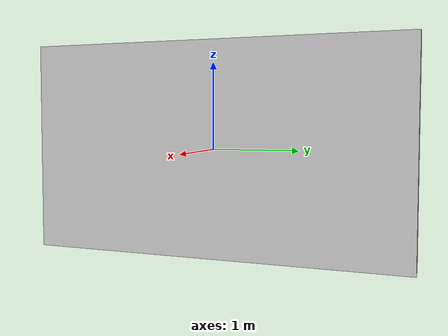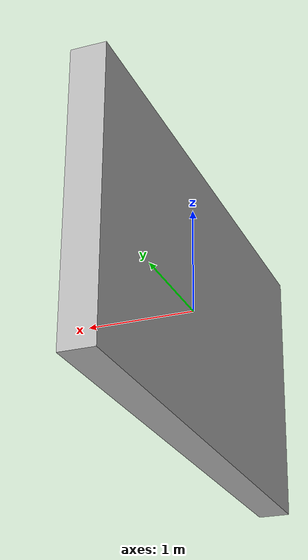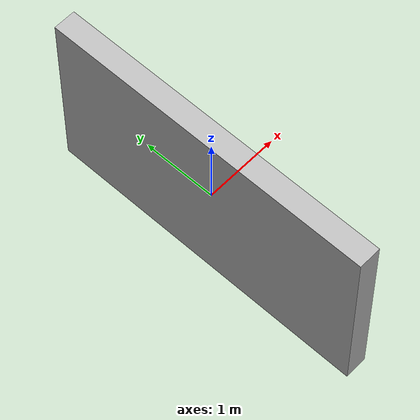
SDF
<?xml version="1.0" ?>
<sdf version="1.5">
  <model name="wall2_thi">
    <static>true</static>
    <link name="link">
      <collision name="collision">
        <geometry>
          <box>
            <size>0.3 4.5 2.5</size>
          </box>
        </geometry>
      </collision>
      <visual name="visual">
        <geometry>
          <box>
            <size>0.3 4.5 2.5</size>
          </box>
        </geometry>
      </visual>
    </link>
  </model>
</sdf>
